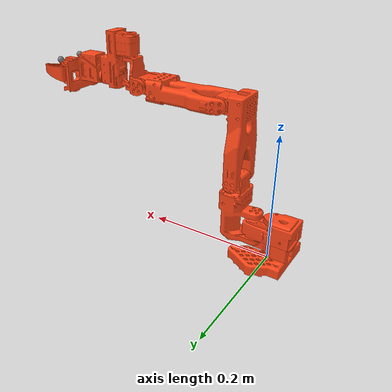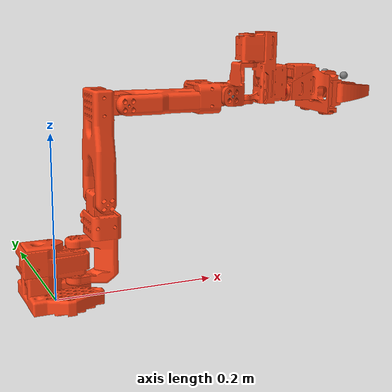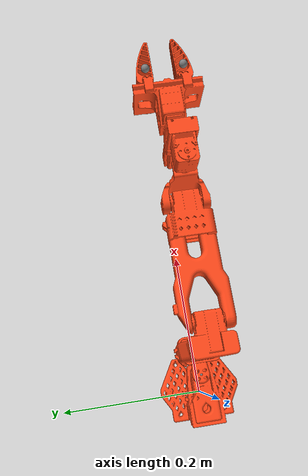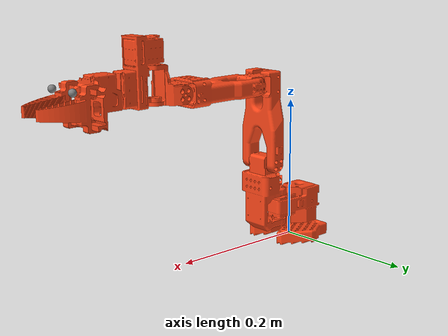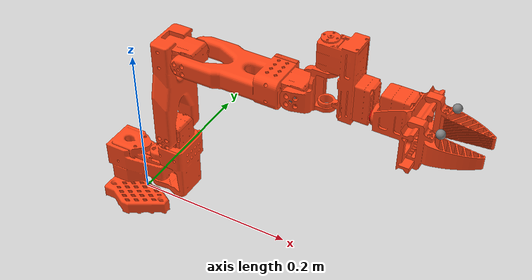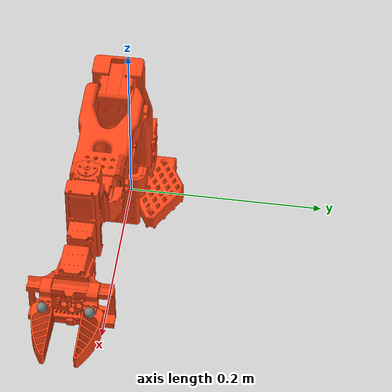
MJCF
<mujoco model="so101_PathonAI_6dof_symmetric_gripper">
  <compiler angle="radian" meshdir="meshes/"/>

  <default>
    <default class="robot">
      <default class="visual">
        <geom contype="0" conaffinity="0" group="2" material="gold"/>
      </default>
      <default class="collision">
        <geom contype="0" group="1" priority="1" friction="1 0.01 0.01" solref="0.005" solimp="0.99 0.999 1e-05" material="collision_material"/>
      </default>
    </default>
    <default class="sts3215">
      <joint armature="0.028" damping="0.6" frictionloss="0.052"/>
      <general biastype="affine" gainprm="17.8" biasprm="0 -17.8"/>
    </default>
    <default class="gripper_symmetric">
      <joint damping="1.0" frictionloss="0.1"/>
      <general biastype="affine" gainprm="50" biasprm="0 -50"/>
    </default>
  </default>

  <asset>
    <material name="gold" rgba="1 0.82 0.12 1"/>
    <material name="default_material" rgba="1 0.82 0.12 1"/>
    <material name="collision_material" rgba="1 0.28 0.1 0.9"/>
    <material name="gripper_material" rgba="0.95 0.75 0.1 1"/>
    <mesh name="base_link" content_type="model/stl" file="base_link.stl" scale="0.001 0.001 0.001"/>
    <mesh name="shoulder_link_1" content_type="model/stl" file="shoulder_link_1.stl" scale="0.001 0.001 0.001"/>
    <mesh name="upper_arm_link_1" content_type="model/stl" file="upper_arm_link_1.stl" scale="0.001 0.001 0.001"/>
    <mesh name="lower_arm_link_1" content_type="model/stl" file="lower_arm_link_1.stl" scale="0.001 0.001 0.001"/>
    <mesh name="link_pitch_1" content_type="model/stl" file="link_pitch_1.stl" scale="0.001 0.001 0.001"/>
    <mesh name="link_yaw_v1_1" content_type="model/stl" file="link_yaw_v1_1.stl" scale="0.001 0.001 0.001"/>
    <mesh name="link_roll_v1_1" content_type="model/stl" file="link_roll_v1_1.stl" scale="0.001 0.001 0.001"/>
    <mesh name="left_jaw_v1_1" content_type="model/stl" file="left_jaw_v1_1.stl" scale="0.001 0.001 0.001"/>
    <mesh name="right_jaw_v1_1" content_type="model/stl" file="right_jaw_v1_1.stl" scale="0.001 0.001 0.001"/>
  </asset>

  <worldbody>
    <body name="base_link" childclass="robot">
      <geom name="base_link_collision" class="collision" type="mesh" mesh="base_link"/>
      <geom name="base_link_visual" class="visual" type="mesh" mesh="base_link"/>
      <site name="base_link_site" pos="0 0 0"/>
      <camera name="front_camera" pos="0 2 0.5" quat="0 0 0.707107 0.707107" mode="track" fovy="90"/>
      <camera name="side_camera" pos="-2 0 0.5" quat="-0.5 -0.5 0.5 0.5" mode="track" fovy="90"/>
      <body name="shoulder_link" pos="0.025192 0.000209 0.066415">
        <inertial pos="0.0312503 -0.000258146 0.00842022" quat="0.680023 0.0239922 0.0148045 0.732649" mass="0.123404" diaginertia="0.000125015 0.000124273 3.37122e-05"/>
        <joint name="Revolute_1" class="sts3215" pos="0 0 0" axis="0.008727 0 0.999962" range="-2.06 2.01"/>
        <geom name="shoulder_link_collision" class="collision" pos="-0.025192 -0.000209 -0.066415" quat="1 0 0 0" type="mesh" mesh="shoulder_link_1"/>
        <geom name="shoulder_link_visual" class="visual" pos="-0.025192 -0.000209 -0.066415" quat="1 0 0 0" type="mesh" mesh="shoulder_link_1"/>
        <site name="Revolute_1_site" pos="0 0 0"/>
        <body name="upper_arm_link" pos="0.031308 -0.019759 0.051976">
          <inertial pos="0.00363689 0.0197508 0.072242" quat="0.998472 0.00273851 0.0551582 -0.00174794" mass="0.160514" diaginertia="0.000278549 0.000244005 6.84456e-05"/>
          <joint name="Revolute_2" class="sts3215" pos="0 0 0" axis="-0.008726 0.999962 7.6e-05" range="-1.75 1.75"/>
          <geom name="upper_arm_link_collision" class="collision" pos="-0.0565 0.01955 -0.118391" type="mesh" mesh="upper_arm_link_1"/>
          <geom name="upper_arm_link_visual" class="visual" pos="-0.0565 0.01955 -0.118391" type="mesh" mesh="upper_arm_link_1"/>
          <site name="Revolute_2_site" pos="0 0 0"/>
          <body name="lower_arm_link" pos="0.028677 0.001197 0.112459">
            <inertial pos="0.0768209 0.0194494 0.000785535" quat="-0.00315238 0.695506 0.00462283 0.718499" mass="0.149314" diaginertia="0.000268228 0.000234022 5.27503e-05"/>
            <joint name="Revolute_3" class="sts3215" pos="0 0 0" axis="0 -1 0" range="-1.52 1.76"/>
            <geom name="lower_arm_link_collision" class="collision" pos="-0.085177 0.018353 -0.23085" quat="1 0 0 0" type="mesh" mesh="lower_arm_link_1"/>
            <geom name="lower_arm_link_visual" class="visual" pos="-0.085177 0.018353 -0.23085" quat="1 0 0 0" type="mesh" mesh="lower_arm_link_1"/>
            <site name="Revolute_3_site" pos="0 0 0"/>
            <body name="wrist_pitch_link" pos="0.134099 0.000648 0.003829">
              <inertial pos="0.012444 0.0197006 0.00705533" quat="0.680193 0.680193 0.193229 -0.193229" mass="0.0177225" diaginertia="8.61803e-06 6.38197e-06 6e-06"/>
              <joint name="Revolute_4" class="sts3215" pos="0 0 0" axis="-0.008802 -0.999924 -0.00865" range="-1.69 1.38"/>
              <geom name="wrist_pitch_link_collision" class="collision" pos="-0.219276 0.017705 -0.234679" type="mesh" mesh="link_pitch_1"/>
              <geom name="wrist_pitch_link_visual" class="visual" pos="-0.219276 0.017705 -0.234679" type="mesh" mesh="link_pitch_1"/>
              <site name="Revolute_4_site" pos="0 0 0"/>
              <body name="wrist_yaw_link" pos="0.029296 0.019056 0.036617">
                <inertial pos="0.0244999 -4.29874e-05 -0.0041547" quat="0.693 -0.140536 -0.140536 0.693" mass="0.0856768" diaginertia="7.5e-05 6.61907e-05 1.88093e-05"/>
                <joint name="Revolute_5" class="sts3215" pos="0 0 0" axis="0.014193 -5e-05 0.999899" range="-1.40 1.32"/>
                <geom name="wrist_yaw_link_collision" class="collision" pos="-0.248572 -0.001351 -0.271296" quat="1 0 0 0" type="mesh" mesh="link_yaw_v1_1"/>
                <geom name="wrist_yaw_link_visual" class="visual" pos="-0.248572 -0.001351 -0.271296" quat="1 0 0 0" type="mesh" mesh="link_yaw_v1_1"/>
                <site name="Revolute_5_site" pos="0 0 0"/>
                <body name="wrist_roll_link" pos="0.055567 -0.000176 -0.037221">
                  <inertial pos="0.0297692 -0.000340441 0.00753887" quat="0.951641 0 -0.307212 0" mass="0.0659461" diaginertia="3.11623e-05 2.7e-05 2.48377e-05"/>
                  <joint name="Revolute_6" class="sts3215" pos="0 0 0" axis="0.999922 -0.008805 -0.008802" range="-3.08 3.09"/>
                  <geom name="wrist_roll_link_collision" class="collision" pos="-0.304139 -0.001175 -0.234075" quat="1 0 0 0" type="mesh" mesh="link_roll_v1_1"/>
                  <geom name="wrist_roll_link_visual" class="visual" pos="-0.304139 -0.001175 -0.234075" quat="1 0 0 0" type="mesh" mesh="link_roll_v1_1"/>
                  <site name="Revolute_6_site" pos="0 0 0" rgba="0 0 1 1"/>
                  <site name="attachment_site" pos="0 0 0" quat="0.5 -0.5 -0.5 0.5" size="0.01" rgba="1 0 0 1"/>
                  <body name="left_jaw" pos="0.04361 0.021616 0.020519" childclass="gripper_symmetric">
                    <inertial pos="0.0238065 -0.00169967 -0.0194467" quat="0.392847 0.587938 0.587938 0.392847" mass="0.0166241" diaginertia="8e-06 6.41421e-06 3.58579e-06"/>
                    <joint name="left_jaw_slider" pos="0 0 0" axis="0.008881 0.999923 0.008649" type="slide" limited="true" range="-0.013 0.013"/>
                    <geom name="left_jaw_collision" class="collision" pos="-0.347749 -0.040991 -0.254594" quat="1 0 0 0" type="mesh" mesh="left_jaw_v1_1"/>
                    <geom name="left_jaw_visual" class="visual" pos="-0.347749 -0.040991 -0.254594" quat="1 0 0 0" type="mesh" mesh="left_jaw_v1_1" material="gripper_material"/>
                    <site name="left_jaw_tip" pos="0.03 0 0"/>
                  </body>
                  <body name="right_jaw" pos="0.043251 -0.022781 0.02017" childclass="gripper_symmetric">
                    <inertial pos="0.0238082 0.00164092 -0.0226258" quat="0.5 0.5 0.5 0.5" mass="0.016624" diaginertia="8e-06 6e-06 4e-06"/>
                    <joint name="right_jaw_slider" pos="0 0 0" axis="0.008881 0.999923 0.008649" type="slide" limited="true" range="-0.013 0.013"/>
                    <geom name="right_jaw_collision" class="collision" pos="-0.34739 -0.000594 -0.254245" quat="1 0 0 0" type="mesh" mesh="right_jaw_v1_1"/>
                    <geom name="right_jaw_visual" class="visual" pos="-0.34739 -0.000594 -0.254245" quat="1 0 0 0" type="mesh" mesh="right_jaw_v1_1" material="gripper_material"/>
                    <site name="right_jaw_tip" pos="0.03 0 0"/>
                  </body>
                </body>
              </body>
            </body>
          </body>
        </body>
      </body>
    </body>
  </worldbody>

  <contact>
    <exclude body1="base_link" body2="shoulder_link"/>
    <exclude body1="shoulder_link" body2="upper_arm_link"/>
    <exclude body1="upper_arm_link" body2="lower_arm_link"/>
    <exclude body1="lower_arm_link" body2="wrist_pitch_link"/>
    <exclude body1="wrist_pitch_link" body2="wrist_yaw_link"/>
    <exclude body1="wrist_yaw_link" body2="wrist_roll_link"/>
  </contact>

  <equality>
    <joint joint1="left_jaw_slider" joint2="right_jaw_slider" polycoef="0 -1 0 0 0" solref="0.0002 1" solimp="0.999 0.9999 0.0001"/>
  </equality>

  <actuator>
    <general name="shoulder_pan" class="sts3215" joint="Revolute_1" ctrlrange="-2.06 2.01" forcerange="-3.35 3.35"/>
    <general name="shoulder_lift" class="sts3215" joint="Revolute_2" ctrlrange="-1.75 1.75" forcerange="-3.35 3.35"/>
    <general name="elbow_flex" class="sts3215" joint="Revolute_3" ctrlrange="-1.52 1.76" forcerange="-3.35 3.35"/>
    <general name="wrist_flex" class="sts3215" joint="Revolute_4" ctrlrange="-1.69 1.38" forcerange="-3.35 3.35"/>
    <general name="wrist_yaw" class="sts3215" joint="Revolute_5" ctrlrange="-1.40 1.32" forcerange="-3.35 3.35"/>
    <general name="wrist_roll" class="sts3215" joint="Revolute_6" ctrlrange="-3.08 3.09" forcerange="-3.35 3.35"/>
    <general name="gripper_jaw_motor" class="gripper_symmetric" joint="left_jaw_slider" ctrlrange="-0.013 0.013" forcerange="-5 5"/>
  </actuator>

  <keyframe>
    <key name="home" qpos="0 0 0 0 0 0 0 0"/>
  </keyframe>

  <sensor>
    <framepos objtype="site" objname="Revolute_1_site" name="Revolute_1_site_pos"/>
    <framequat objtype="site" objname="Revolute_1_site" name="Revolute_1_site_quat"/>
    <framelinvel objtype="site" objname="Revolute_1_site" name="Revolute_1_site_linvel"/>
    <frameangvel objtype="site" objname="Revolute_1_site" name="Revolute_1_site_angvel"/>
    <velocimeter site="Revolute_1_site" name="Revolute_1_site_vel"/>
  </sensor>
</mujoco>
